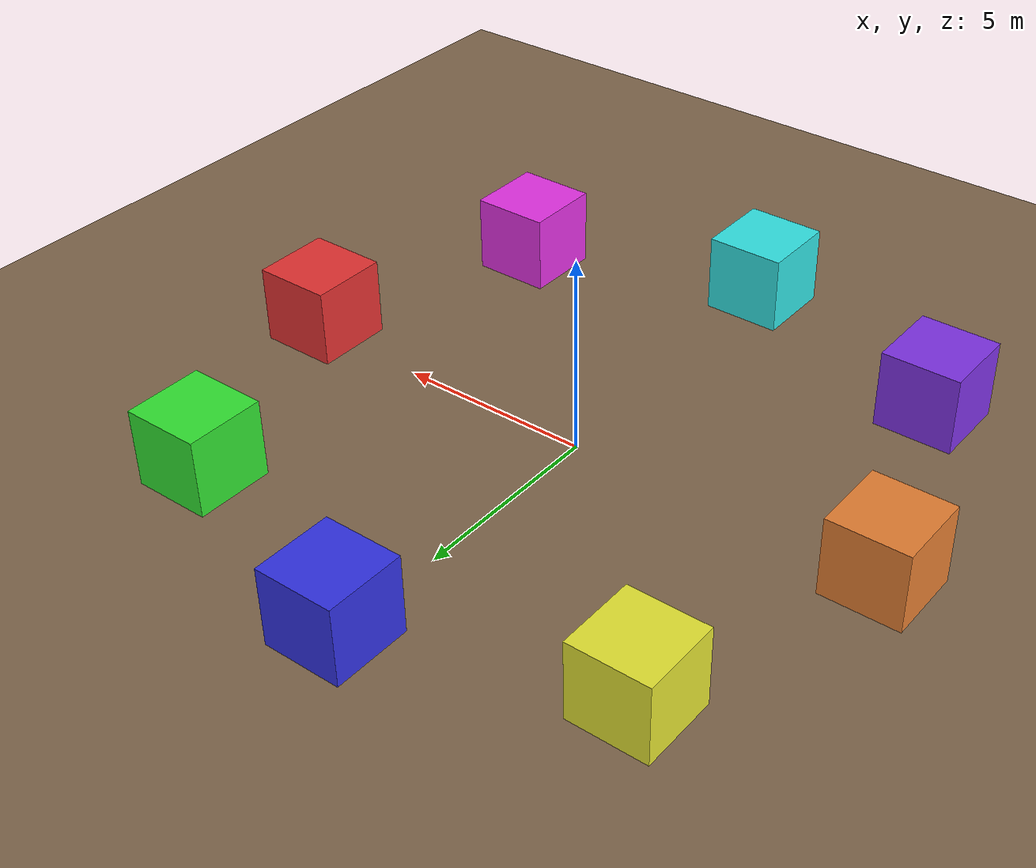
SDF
<?xml version="1.0" ?>
<sdf version="1.10">
  <world name="bare">
    <plugin filename="gz-sim-physics-system" name="gz::sim::systems::Physics"/>
    <plugin filename="gz-sim-sensors-system" name="gz::sim::systems::Sensors">
      <render_engine>ogre2</render_engine>
    </plugin>
    <plugin filename="gz-sim-scene-broadcaster-system" name="gz::sim::systems::SceneBroadcaster"/>

    <scene><ambient>1 1 1 1</ambient><background>0.3 0.7 0.9 1</background><grid>false</grid></scene>
    <light name="sun" type="directional"><pose>0 0 10 0 0 0</pose><cast_shadows>false</cast_shadows>
      <diffuse>1 1 1 1</diffuse><direction>-0.3 0.2 -0.9</direction></light>

    <model name="ground"><static>true</static><link name="l">
      <visual name="v"><geometry><plane><normal>0 0 1</normal><size>200 200</size></plane></geometry>
        <material><diffuse>0.5 0.4 0.3 1</diffuse></material></visual></link></model>

    <!-- a ring of boxes so a camera at ANY yaw sees geometry -->
    <model name="b_e"><static>true</static><pose>8 0 1 0 0 0</pose><link name="l"><visual name="v"><geometry><box><size>2 2 2</size></box></geometry><material><diffuse>0.9 0.2 0.2 1</diffuse></material></visual></link></model>
    <model name="b_ne"><static>true</static><pose>6 6 1 0 0 0</pose><link name="l"><visual name="v"><geometry><box><size>2 2 2</size></box></geometry><material><diffuse>0.2 0.9 0.2 1</diffuse></material></visual></link></model>
    <model name="b_n"><static>true</static><pose>0 8 1 0 0 0</pose><link name="l"><visual name="v"><geometry><box><size>2 2 2</size></box></geometry><material><diffuse>0.2 0.2 0.9 1</diffuse></material></visual></link></model>
    <model name="b_nw"><static>true</static><pose>-6 6 1 0 0 0</pose><link name="l"><visual name="v"><geometry><box><size>2 2 2</size></box></geometry><material><diffuse>0.9 0.9 0.2 1</diffuse></material></visual></link></model>
    <model name="b_w"><static>true</static><pose>-8 0 1 0 0 0</pose><link name="l"><visual name="v"><geometry><box><size>2 2 2</size></box></geometry><material><diffuse>0.9 0.5 0.2 1</diffuse></material></visual></link></model>
    <model name="b_sw"><static>true</static><pose>-6 -6 1 0 0 0</pose><link name="l"><visual name="v"><geometry><box><size>2 2 2</size></box></geometry><material><diffuse>0.5 0.2 0.9 1</diffuse></material></visual></link></model>
    <model name="b_s"><static>true</static><pose>0 -8 1 0 0 0</pose><link name="l"><visual name="v"><geometry><box><size>2 2 2</size></box></geometry><material><diffuse>0.2 0.9 0.9 1</diffuse></material></visual></link></model>
    <model name="b_se"><static>true</static><pose>6 -6 1 0 0 0</pose><link name="l"><visual name="v"><geometry><box><size>2 2 2</size></box></geometry><material><diffuse>0.9 0.2 0.9 1</diffuse></material></visual></link></model>

    <!-- bare rgbd_cameras at fixed world yaws: 0 & 90 cardinal, 45 & 135 diagonal -->
    <model name="cam_y0"><static>true</static><pose>0 0 1 0 0 0</pose><link name="l">
      <sensor name="rgbd_camera" type="rgbd_camera"><topic>cy0</topic><always_on>1</always_on><update_rate>5</update_rate>
        <camera><horizontal_fov>1.25</horizontal_fov><image><width>320</width><height>240</height></image>
          <clip><near>0.3</near><far>100</far></clip>
          <save enabled="true"><path>/results/bare_y0</path></save></camera></sensor></link></model>
    <model name="cam_y45"><static>true</static><pose>0 0 1 0 0 0.7854</pose><link name="l">
      <sensor name="rgbd_camera" type="rgbd_camera"><topic>cy45</topic><always_on>1</always_on><update_rate>5</update_rate>
        <camera><horizontal_fov>1.25</horizontal_fov><image><width>320</width><height>240</height></image>
          <clip><near>0.3</near><far>100</far></clip>
          <save enabled="true"><path>/results/bare_y45</path></save></camera></sensor></link></model>
    <model name="cam_y90"><static>true</static><pose>0 0 1 0 0 1.5708</pose><link name="l">
      <sensor name="rgbd_camera" type="rgbd_camera"><topic>cy90</topic><always_on>1</always_on><update_rate>5</update_rate>
        <camera><horizontal_fov>1.25</horizontal_fov><image><width>320</width><height>240</height></image>
          <clip><near>0.3</near><far>100</far></clip>
          <save enabled="true"><path>/results/bare_y90</path></save></camera></sensor></link></model>
    <model name="cam_y135"><static>true</static><pose>0 0 1 0 0 2.3562</pose><link name="l">
      <sensor name="rgbd_camera" type="rgbd_camera"><topic>cy135</topic><always_on>1</always_on><update_rate>5</update_rate>
        <camera><horizontal_fov>1.25</horizontal_fov><image><width>320</width><height>240</height></image>
          <clip><near>0.3</near><far>100</far></clip>
          <save enabled="true"><path>/results/bare_y135</path></save></camera></sensor></link></model>
  </world>
</sdf>
